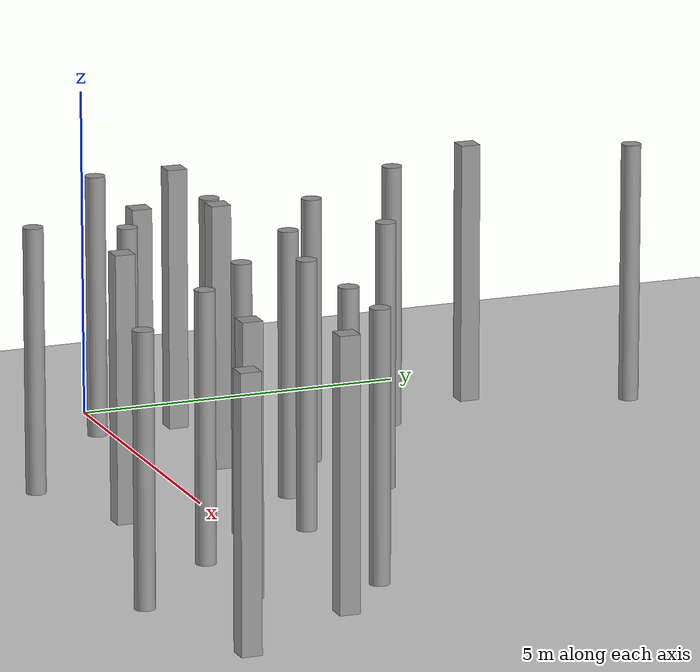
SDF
<sdf version="1.6">
 <world name="default">
  <model name="ground_plane">
   <static>1</static>
   <link name="link">
    <collision name="collision">
     <geometry><plane><normal>0 0 1</normal><size>100 100</size></plane></geometry>
    </collision>
    <visual name="visual">
     <cast_shadows>0</cast_shadows>
     <geometry><plane><normal>0 0 1</normal><size>100 100</size></plane></geometry>
     <material>
      <script><uri>file://media/materials/scripts/gazebo.material</uri><name>Gazebo/Gray</name></script>
     </material>
    </visual>
   </link>
  </model>
  <model name="unit_box_clone_5">
   <link name="link">
    <inertial>
     <mass>1000</mass>
     <inertia><ixx>166.667</ixx><ixy>0</ixy><ixz>0</ixz><iyy>166.667</iyy><iyz>0</iyz><izz>166.667</izz></inertia>
    </inertial>
    <visual name="visual">
     <geometry><box><size>0.3 0.3 4</size></box></geometry>
     <material>
      <script><name>Gazebo/Grey</name><uri>file://media/materials/scripts/gazebo.material</uri></script>
      <shader type="vertex"><normal_map>__default__</normal_map></shader>
      <ambient>0.3 0.3 0.3 1</ambient>
      <diffuse>0.7 0.7 0.7 1</diffuse>
      <specular>0.01 0.01 0.01 1</specular>
      <emissive>0 0 0 1</emissive>
     </material>
    </visual>
    <collision name="collision">
     <geometry><box><size>0.3 0.3 4</size></box></geometry>
     <surface>
      <friction>
       <ode><mu>1</mu><mu2>1</mu2><fdir1>0 0 0</fdir1><slip1>0</slip1><slip2>0</slip2></ode>
       <torsional>
        <coefficient>1</coefficient>
        <patch_radius>0</patch_radius>
        <surface_radius>0</surface_radius>
        <use_patch_radius>1</use_patch_radius>
        <ode><slip>0</slip></ode>
       </torsional>
      </friction>
      <bounce><restitution_coefficient>0</restitution_coefficient><threshold>1e+06</threshold></bounce>
      <contact>
       <collide_without_contact>0</collide_without_contact>
       <collide_without_contact_bitmask>1</collide_without_contact_bitmask>
       <collide_bitmask>1</collide_bitmask>
       <ode>
        <soft_cfm>0</soft_cfm>
        <soft_erp>0.2</soft_erp>
        <kp>1e+13</kp>
        <kd>1</kd>
        <max_vel>0.01</max_vel>
        <min_depth>0</min_depth>
       </ode>
       <bullet>
        <split_impulse>1</split_impulse>
        <split_impulse_penetration_threshold>-0.01</split_impulse_penetration_threshold>
        <soft_cfm>0</soft_cfm>
        <soft_erp>0.2</soft_erp>
        <kp>1e+13</kp>
        <kd>1</kd>
       </bullet>
      </contact>
     </surface>
    </collision>
   </link>
   <static>0</static>
   <pose>3.35408 0.911814 2 1e-06 5e-06 -0.010194</pose>
  </model>
  <model name="unit_box_clone_6">
   <link name="link">
    <inertial>
     <mass>1000</mass>
     <inertia><ixx>166.667</ixx><ixy>0</ixy><ixz>0</ixz><iyy>166.667</iyy><iyz>0</iyz><izz>166.667</izz></inertia>
    </inertial>
    <visual name="visual">
     <geometry><box><size>0.3 0.3 4</size></box></geometry>
     <material>
      <script><name>Gazebo/Grey</name><uri>file://media/materials/scripts/gazebo.material</uri></script>
      <shader type="vertex"><normal_map>__default__</normal_map></shader>
      <ambient>0.3 0.3 0.3 1</ambient>
      <diffuse>0.7 0.7 0.7 1</diffuse>
      <specular>0.01 0.01 0.01 1</specular>
      <emissive>0 0 0 1</emissive>
     </material>
    </visual>
    <collision name="collision">
     <geometry><box><size>0.3 0.3 4</size></box></geometry>
     <surface>
      <friction>
       <ode><mu>1</mu><mu2>1</mu2><fdir1>0 0 0</fdir1><slip1>0</slip1><slip2>0</slip2></ode>
       <torsional>
        <coefficient>1</coefficient>
        <patch_radius>0</patch_radius>
        <surface_radius>0</surface_radius>
        <use_patch_radius>1</use_patch_radius>
        <ode><slip>0</slip></ode>
       </torsional>
      </friction>
      <bounce><restitution_coefficient>0</restitution_coefficient><threshold>1e+06</threshold></bounce>
      <contact>
       <collide_without_contact>0</collide_without_contact>
       <collide_without_contact_bitmask>1</collide_without_contact_bitmask>
       <collide_bitmask>1</collide_bitmask>
       <ode>
        <soft_cfm>0</soft_cfm>
        <soft_erp>0.2</soft_erp>
        <kp>1e+13</kp>
        <kd>1</kd>
        <max_vel>0.01</max_vel>
        <min_depth>0</min_depth>
       </ode>
       <bullet>
        <split_impulse>1</split_impulse>
        <split_impulse_penetration_threshold>-0.01</split_impulse_penetration_threshold>
        <soft_cfm>0</soft_cfm>
        <soft_erp>0.2</soft_erp>
        <kp>1e+13</kp>
        <kd>1</kd>
       </bullet>
      </contact>
     </surface>
    </collision>
   </link>
   <static>0</static>
   <pose>10.5124 0.091577 2 1.3e-05 -1e-06 -0.012364</pose>
  </model>
  <model name="unit_cylinder">
   <link name="link">
    <inertial>
     <mass>1000</mass>
     <inertia><ixx>145.833</ixx><ixy>0</ixy><ixz>0</ixz><iyy>145.833</iyy><iyz>0</iyz><izz>125</izz></inertia>
    </inertial>
    <visual name="visual">
     <geometry><cylinder><radius>0.15</radius><length>4</length></cylinder></geometry>
     <material>
      <script><name>Gazebo/Grey</name><uri>file://media/materials/scripts/gazebo.material</uri></script>
      <shader type="vertex"><normal_map>__default__</normal_map></shader>
      <ambient>0.3 0.3 0.3 1</ambient>
      <diffuse>0.7 0.7 0.7 1</diffuse>
      <specular>0.01 0.01 0.01 1</specular>
      <emissive>0 0 0 1</emissive>
     </material>
    </visual>
    <collision name="collision">
     <geometry><cylinder><radius>0.15</radius><length>4</length></cylinder></geometry>
     <surface>
      <friction>
       <ode><mu>1</mu><mu2>1</mu2><fdir1>0 0 0</fdir1><slip1>0</slip1><slip2>0</slip2></ode>
       <torsional>
        <coefficient>1</coefficient>
        <patch_radius>0</patch_radius>
        <surface_radius>0</surface_radius>
        <use_patch_radius>1</use_patch_radius>
        <ode><slip>0</slip></ode>
       </torsional>
      </friction>
      <bounce><restitution_coefficient>0</restitution_coefficient><threshold>1e+06</threshold></bounce>
      <contact>
       <collide_without_contact>0</collide_without_contact>
       <collide_without_contact_bitmask>1</collide_without_contact_bitmask>
       <collide_bitmask>1</collide_bitmask>
       <ode>
        <soft_cfm>0</soft_cfm>
        <soft_erp>0.2</soft_erp>
        <kp>1e+13</kp>
        <kd>1</kd>
        <max_vel>0.01</max_vel>
        <min_depth>0</min_depth>
       </ode>
       <bullet>
        <split_impulse>1</split_impulse>
        <split_impulse_penetration_threshold>-0.01</split_impulse_penetration_threshold>
        <soft_cfm>0</soft_cfm>
        <soft_erp>0.2</soft_erp>
        <kp>1e+13</kp>
        <kd>1</kd>
       </bullet>
      </contact>
     </surface>
    </collision>
   </link>
   <static>0</static>
   <pose>3.55601 2.30072 1.99998 -1e-06 1e-06 -0.131824</pose>
  </model>
  <model name="unit_cylinder_clone_4">
   <link name="link">
    <inertial>
     <mass>1000</mass>
     <inertia><ixx>145.833</ixx><ixy>0</ixy><ixz>0</ixz><iyy>145.833</iyy><iyz>0</iyz><izz>125</izz></inertia>
    </inertial>
    <visual name="visual">
     <geometry><cylinder><radius>0.15</radius><length>4</length></cylinder></geometry>
     <material>
      <script><name>Gazebo/Grey</name><uri>file://media/materials/scripts/gazebo.material</uri></script>
      <shader type="vertex"><normal_map>__default__</normal_map></shader>
      <ambient>0.3 0.3 0.3 1</ambient>
      <diffuse>0.7 0.7 0.7 1</diffuse>
      <specular>0.01 0.01 0.01 1</specular>
      <emissive>0 0 0 1</emissive>
     </material>
    </visual>
    <collision name="collision">
     <geometry><cylinder><radius>0.15</radius><length>4</length></cylinder></geometry>
     <surface>
      <friction>
       <ode><mu>1</mu><mu2>1</mu2><fdir1>0 0 0</fdir1><slip1>0</slip1><slip2>0</slip2></ode>
       <torsional>
        <coefficient>1</coefficient>
        <patch_radius>0</patch_radius>
        <surface_radius>0</surface_radius>
        <use_patch_radius>1</use_patch_radius>
        <ode><slip>0</slip></ode>
       </torsional>
      </friction>
      <bounce><restitution_coefficient>0</restitution_coefficient><threshold>1e+06</threshold></bounce>
      <contact>
       <collide_without_contact>0</collide_without_contact>
       <collide_without_contact_bitmask>1</collide_without_contact_bitmask>
       <collide_bitmask>1</collide_bitmask>
       <ode>
        <soft_cfm>0</soft_cfm>
        <soft_erp>0.2</soft_erp>
        <kp>1e+13</kp>
        <kd>1</kd>
        <max_vel>0.01</max_vel>
        <min_depth>0</min_depth>
       </ode>
       <bullet>
        <split_impulse>1</split_impulse>
        <split_impulse_penetration_threshold>-0.01</split_impulse_penetration_threshold>
        <soft_cfm>0</soft_cfm>
        <soft_erp>0.2</soft_erp>
        <kp>1e+13</kp>
        <kd>1</kd>
       </bullet>
      </contact>
     </surface>
    </collision>
   </link>
   <static>0</static>
   <pose>5.12407 1.326 1.99998 -2e-06 -1e-06 -0.127446</pose>
  </model>
  <model name="unit_cylinder_clone_5">
   <link name="link">
    <inertial>
     <mass>1000</mass>
     <inertia><ixx>145.833</ixx><ixy>0</ixy><ixz>0</ixz><iyy>145.833</iyy><iyz>0</iyz><izz>125</izz></inertia>
    </inertial>
    <visual name="visual">
     <geometry><cylinder><radius>0.15</radius><length>4</length></cylinder></geometry>
     <material>
      <script><name>Gazebo/Grey</name><uri>file://media/materials/scripts/gazebo.material</uri></script>
      <shader type="vertex"><normal_map>__default__</normal_map></shader>
      <ambient>0.3 0.3 0.3 1</ambient>
      <diffuse>0.7 0.7 0.7 1</diffuse>
      <specular>0.01 0.01 0.01 1</specular>
      <emissive>0 0 0 1</emissive>
     </material>
    </visual>
    <collision name="collision">
     <geometry><cylinder><radius>0.15</radius><length>4</length></cylinder></geometry>
     <surface>
      <friction>
       <ode><mu>1</mu><mu2>1</mu2><fdir1>0 0 0</fdir1><slip1>0</slip1><slip2>0</slip2></ode>
       <torsional>
        <coefficient>1</coefficient>
        <patch_radius>0</patch_radius>
        <surface_radius>0</surface_radius>
        <use_patch_radius>1</use_patch_radius>
        <ode><slip>0</slip></ode>
       </torsional>
      </friction>
      <bounce><restitution_coefficient>0</restitution_coefficient><threshold>1e+06</threshold></bounce>
      <contact>
       <collide_without_contact>0</collide_without_contact>
       <collide_without_contact_bitmask>1</collide_without_contact_bitmask>
       <collide_bitmask>1</collide_bitmask>
       <ode>
        <soft_cfm>0</soft_cfm>
        <soft_erp>0.2</soft_erp>
        <kp>1e+13</kp>
        <kd>1</kd>
        <max_vel>0.01</max_vel>
        <min_depth>0</min_depth>
       </ode>
       <bullet>
        <split_impulse>1</split_impulse>
        <split_impulse_penetration_threshold>-0.01</split_impulse_penetration_threshold>
        <soft_cfm>0</soft_cfm>
        <soft_erp>0.2</soft_erp>
        <kp>1e+13</kp>
        <kd>1</kd>
       </bullet>
      </contact>
     </surface>
    </collision>
   </link>
   <static>0</static>
   <pose>5.2098 2.80517 1.99998 -1e-06 -1e-06 -0.12355</pose>
  </model>
  <model name="unit_cylinder_clone_6">
   <link name="link">
    <inertial>
     <mass>1000</mass>
     <inertia><ixx>145.833</ixx><ixy>0</ixy><ixz>0</ixz><iyy>145.833</iyy><iyz>0</iyz><izz>125</izz></inertia>
    </inertial>
    <visual name="visual">
     <geometry><cylinder><radius>0.15</radius><length>4</length></cylinder></geometry>
     <material>
      <script><name>Gazebo/Grey</name><uri>file://media/materials/scripts/gazebo.material</uri></script>
      <shader type="vertex"><normal_map>__default__</normal_map></shader>
      <ambient>0.3 0.3 0.3 1</ambient>
      <diffuse>0.7 0.7 0.7 1</diffuse>
      <specular>0.01 0.01 0.01 1</specular>
      <emissive>0 0 0 1</emissive>
     </material>
    </visual>
    <collision name="collision">
     <geometry><cylinder><radius>0.15</radius><length>4</length></cylinder></geometry>
     <surface>
      <friction>
       <ode><mu>1</mu><mu2>1</mu2><fdir1>0 0 0</fdir1><slip1>0</slip1><slip2>0</slip2></ode>
       <torsional>
        <coefficient>1</coefficient>
        <patch_radius>0</patch_radius>
        <surface_radius>0</surface_radius>
        <use_patch_radius>1</use_patch_radius>
        <ode><slip>0</slip></ode>
       </torsional>
      </friction>
      <bounce><restitution_coefficient>0</restitution_coefficient><threshold>1e+06</threshold></bounce>
      <contact>
       <collide_without_contact>0</collide_without_contact>
       <collide_without_contact_bitmask>1</collide_without_contact_bitmask>
       <collide_bitmask>1</collide_bitmask>
       <ode>
        <soft_cfm>0</soft_cfm>
        <soft_erp>0.2</soft_erp>
        <kp>1e+13</kp>
        <kd>1</kd>
        <max_vel>0.01</max_vel>
        <min_depth>0</min_depth>
       </ode>
       <bullet>
        <split_impulse>1</split_impulse>
        <split_impulse_penetration_threshold>-0.01</split_impulse_penetration_threshold>
        <soft_cfm>0</soft_cfm>
        <soft_erp>0.2</soft_erp>
        <kp>1e+13</kp>
        <kd>1</kd>
       </bullet>
      </contact>
     </surface>
    </collision>
   </link>
   <static>0</static>
   <pose>2.98126 0.91654 1.99998 -2e-06 1e-06 -0.126861</pose>
  </model>
  <model name="unit_box_clone_20_clone">
   <link name="link">
    <inertial>
     <mass>1000</mass>
     <inertia><ixx>166.667</ixx><ixy>0</ixy><ixz>0</ixz><iyy>166.667</iyy><iyz>0</iyz><izz>166.667</izz></inertia>
    </inertial>
    <visual name="visual">
     <geometry><box><size>0.3 0.3 4</size></box></geometry>
     <material>
      <script><name>Gazebo/Grey</name><uri>file://media/materials/scripts/gazebo.material</uri></script>
      <shader type="vertex"><normal_map>__default__</normal_map></shader>
      <ambient>0.3 0.3 0.3 1</ambient>
      <diffuse>0.7 0.7 0.7 1</diffuse>
      <specular>0.01 0.01 0.01 1</specular>
      <emissive>0 0 0 1</emissive>
     </material>
    </visual>
    <collision name="collision">
     <geometry><box><size>0.3 0.3 4</size></box></geometry>
     <surface>
      <friction>
       <ode><mu>1</mu><mu2>1</mu2><fdir1>0 0 0</fdir1><slip1>0</slip1><slip2>0</slip2></ode>
       <torsional>
        <coefficient>1</coefficient>
        <patch_radius>0</patch_radius>
        <surface_radius>0</surface_radius>
        <use_patch_radius>1</use_patch_radius>
        <ode><slip>0</slip></ode>
       </torsional>
      </friction>
      <bounce><restitution_coefficient>0</restitution_coefficient><threshold>1e+06</threshold></bounce>
      <contact>
       <collide_without_contact>0</collide_without_contact>
       <collide_without_contact_bitmask>1</collide_without_contact_bitmask>
       <collide_bitmask>1</collide_bitmask>
       <ode>
        <soft_cfm>0</soft_cfm>
        <soft_erp>0.2</soft_erp>
        <kp>1e+13</kp>
        <kd>1</kd>
        <max_vel>0.01</max_vel>
        <min_depth>0</min_depth>
       </ode>
       <bullet>
        <split_impulse>1</split_impulse>
        <split_impulse_penetration_threshold>-0.01</split_impulse_penetration_threshold>
        <soft_cfm>0</soft_cfm>
        <soft_erp>0.2</soft_erp>
        <kp>1e+13</kp>
        <kd>1</kd>
       </bullet>
      </contact>
     </surface>
    </collision>
   </link>
   <static>0</static>
   <pose>3.12598 -0.231344 2.00001 9e-06 2.7e-05 -0.004146</pose>
  </model>
  <model name="unit_cylinder_clone_1_clone_7">
   <link name="link">
    <inertial>
     <mass>1000</mass>
     <inertia><ixx>145.833</ixx><ixy>0</ixy><ixz>0</ixz><iyy>145.833</iyy><iyz>0</iyz><izz>125</izz></inertia>
    </inertial>
    <visual name="visual">
     <geometry><cylinder><radius>0.15</radius><length>4</length></cylinder></geometry>
     <material>
      <script><name>Gazebo/Grey</name><uri>file://media/materials/scripts/gazebo.material</uri></script>
      <shader type="vertex"><normal_map>__default__</normal_map></shader>
      <ambient>0.3 0.3 0.3 1</ambient>
      <diffuse>0.7 0.7 0.7 1</diffuse>
      <specular>0.01 0.01 0.01 1</specular>
      <emissive>0 0 0 1</emissive>
     </material>
    </visual>
    <collision name="collision">
     <geometry><cylinder><radius>0.15</radius><length>4</length></cylinder></geometry>
     <surface>
      <friction>
       <ode><mu>1</mu><mu2>1</mu2><fdir1>0 0 0</fdir1><slip1>0</slip1><slip2>0</slip2></ode>
       <torsional>
        <coefficient>1</coefficient>
        <patch_radius>0</patch_radius>
        <surface_radius>0</surface_radius>
        <use_patch_radius>1</use_patch_radius>
        <ode><slip>0</slip></ode>
       </torsional>
      </friction>
      <bounce><restitution_coefficient>0</restitution_coefficient><threshold>1e+06</threshold></bounce>
      <contact>
       <collide_without_contact>0</collide_without_contact>
       <collide_without_contact_bitmask>1</collide_without_contact_bitmask>
       <collide_bitmask>1</collide_bitmask>
       <ode>
        <soft_cfm>0</soft_cfm>
        <soft_erp>0.2</soft_erp>
        <kp>1e+13</kp>
        <kd>1</kd>
        <max_vel>0.01</max_vel>
        <min_depth>0</min_depth>
       </ode>
       <bullet>
        <split_impulse>1</split_impulse>
        <split_impulse_penetration_threshold>-0.01</split_impulse_penetration_threshold>
        <soft_cfm>0</soft_cfm>
        <soft_erp>0.2</soft_erp>
        <kp>1e+13</kp>
        <kd>1</kd>
       </bullet>
      </contact>
     </surface>
    </collision>
   </link>
   <static>0</static>
   <pose>7.71247 -0.927785 1.99995 -0.000268 4.9e-05 -0.614103</pose>
  </model>
  <model name="unit_cylinder_clone_1_clone_22">
   <link name="link">
    <inertial>
     <mass>1000</mass>
     <inertia><ixx>145.833</ixx><ixy>0</ixy><ixz>0</ixz><iyy>145.833</iyy><iyz>0</iyz><izz>125</izz></inertia>
    </inertial>
    <visual name="visual">
     <geometry><cylinder><radius>0.15</radius><length>4</length></cylinder></geometry>
     <material>
      <script><name>Gazebo/Grey</name><uri>file://media/materials/scripts/gazebo.material</uri></script>
      <shader type="vertex"><normal_map>__default__</normal_map></shader>
      <ambient>0.3 0.3 0.3 1</ambient>
      <diffuse>0.7 0.7 0.7 1</diffuse>
      <specular>0.01 0.01 0.01 1</specular>
      <emissive>0 0 0 1</emissive>
     </material>
    </visual>
    <collision name="collision">
     <geometry><cylinder><radius>0.15</radius><length>4</length></cylinder></geometry>
     <surface>
      <friction>
       <ode><mu>1</mu><mu2>1</mu2><fdir1>0 0 0</fdir1><slip1>0</slip1><slip2>0</slip2></ode>
       <torsional>
        <coefficient>1</coefficient>
        <patch_radius>0</patch_radius>
        <surface_radius>0</surface_radius>
        <use_patch_radius>1</use_patch_radius>
        <ode><slip>0</slip></ode>
       </torsional>
      </friction>
      <bounce><restitution_coefficient>0</restitution_coefficient><threshold>1e+06</threshold></bounce>
      <contact>
       <collide_without_contact>0</collide_without_contact>
       <collide_without_contact_bitmask>1</collide_without_contact_bitmask>
       <collide_bitmask>1</collide_bitmask>
       <ode>
        <soft_cfm>0</soft_cfm>
        <soft_erp>0.2</soft_erp>
        <kp>1e+13</kp>
        <kd>1</kd>
        <max_vel>0.01</max_vel>
        <min_depth>0</min_depth>
       </ode>
       <bullet>
        <split_impulse>1</split_impulse>
        <split_impulse_penetration_threshold>-0.01</split_impulse_penetration_threshold>
        <soft_cfm>0</soft_cfm>
        <soft_erp>0.2</soft_erp>
        <kp>1e+13</kp>
        <kd>1</kd>
       </bullet>
      </contact>
     </surface>
    </collision>
   </link>
   <static>0</static>
   <pose>8.29048 1.00177 1.99995 -0.000268 5.1e-05 -0.606129</pose>
  </model>
  <model name="unit_cylinder_clone_1_clone_29">
   <link name="link">
    <inertial>
     <mass>1000</mass>
     <inertia><ixx>145.833</ixx><ixy>0</ixy><ixz>0</ixz><iyy>145.833</iyy><iyz>0</iyz><izz>125</izz></inertia>
    </inertial>
    <visual name="visual">
     <geometry><cylinder><radius>0.15</radius><length>4</length></cylinder></geometry>
     <material>
      <script><name>Gazebo/Grey</name><uri>file://media/materials/scripts/gazebo.material</uri></script>
      <shader type="vertex"><normal_map>__default__</normal_map></shader>
      <ambient>0.3 0.3 0.3 1</ambient>
      <diffuse>0.7 0.7 0.7 1</diffuse>
      <specular>0.01 0.01 0.01 1</specular>
      <emissive>0 0 0 1</emissive>
     </material>
    </visual>
    <collision name="collision">
     <geometry><cylinder><radius>0.15</radius><length>4</length></cylinder></geometry>
     <surface>
      <friction>
       <ode><mu>1</mu><mu2>1</mu2><fdir1>0 0 0</fdir1><slip1>0</slip1><slip2>0</slip2></ode>
       <torsional>
        <coefficient>1</coefficient>
        <patch_radius>0</patch_radius>
        <surface_radius>0</surface_radius>
        <use_patch_radius>1</use_patch_radius>
        <ode><slip>0</slip></ode>
       </torsional>
      </friction>
      <bounce><restitution_coefficient>0</restitution_coefficient><threshold>1e+06</threshold></bounce>
      <contact>
       <collide_without_contact>0</collide_without_contact>
       <collide_without_contact_bitmask>1</collide_without_contact_bitmask>
       <collide_bitmask>1</collide_bitmask>
       <ode>
        <soft_cfm>0</soft_cfm>
        <soft_erp>0.2</soft_erp>
        <kp>1e+13</kp>
        <kd>1</kd>
        <max_vel>0.01</max_vel>
        <min_depth>0</min_depth>
       </ode>
       <bullet>
        <split_impulse>1</split_impulse>
        <split_impulse_penetration_threshold>-0.01</split_impulse_penetration_threshold>
        <soft_cfm>0</soft_cfm>
        <soft_erp>0.2</soft_erp>
        <kp>1e+13</kp>
        <kd>1</kd>
       </bullet>
      </contact>
     </surface>
    </collision>
   </link>
   <static>0</static>
   <pose>9.33766 -2.43636 1.99995 -0.000268 4.9e-05 -0.614716</pose>
  </model>
  <model name="unit_cylinder_clone_1_clone_7_clone">
   <link name="link">
    <inertial>
     <mass>1000</mass>
     <inertia><ixx>145.833</ixx><ixy>0</ixy><ixz>0</ixz><iyy>145.833</iyy><iyz>0</iyz><izz>125</izz></inertia>
    </inertial>
    <visual name="visual">
     <geometry><cylinder><radius>0.15</radius><length>4</length></cylinder></geometry>
     <material>
      <script><name>Gazebo/Grey</name><uri>file://media/materials/scripts/gazebo.material</uri></script>
      <shader type="vertex"><normal_map>__default__</normal_map></shader>
      <ambient>0.3 0.3 0.3 1</ambient>
      <diffuse>0.7 0.7 0.7 1</diffuse>
      <specular>0.01 0.01 0.01 1</specular>
      <emissive>0 0 0 1</emissive>
     </material>
    </visual>
    <collision name="collision">
     <geometry><cylinder><radius>0.15</radius><length>4</length></cylinder></geometry>
     <surface>
      <friction>
       <ode><mu>1</mu><mu2>1</mu2><fdir1>0 0 0</fdir1><slip1>0</slip1><slip2>0</slip2></ode>
       <torsional>
        <coefficient>1</coefficient>
        <patch_radius>0</patch_radius>
        <surface_radius>0</surface_radius>
        <use_patch_radius>1</use_patch_radius>
        <ode><slip>0</slip></ode>
       </torsional>
      </friction>
      <bounce><restitution_coefficient>0</restitution_coefficient><threshold>1e+06</threshold></bounce>
      <contact>
       <collide_without_contact>0</collide_without_contact>
       <collide_without_contact_bitmask>1</collide_without_contact_bitmask>
       <collide_bitmask>1</collide_bitmask>
       <ode>
        <soft_cfm>0</soft_cfm>
        <soft_erp>0.2</soft_erp>
        <kp>1e+13</kp>
        <kd>1</kd>
        <max_vel>0.01</max_vel>
        <min_depth>0</min_depth>
       </ode>
       <bullet>
        <split_impulse>1</split_impulse>
        <split_impulse_penetration_threshold>-0.01</split_impulse_penetration_threshold>
        <soft_cfm>0</soft_cfm>
        <soft_erp>0.2</soft_erp>
        <kp>1e+13</kp>
        <kd>1</kd>
       </bullet>
      </contact>
     </surface>
    </collision>
   </link>
   <static>0</static>
   <pose>2.22452 4.10934 1.99995 -0.000268 4.9e-05 -0.611901</pose>
  </model>
  <model name="unit_cylinder_clone_1_clone_7_clone_1">
   <link name="link">
    <inertial>
     <mass>1000</mass>
     <inertia><ixx>145.833</ixx><ixy>0</ixy><ixz>0</ixz><iyy>145.833</iyy><iyz>0</iyz><izz>125</izz></inertia>
    </inertial>
    <visual name="visual">
     <geometry><cylinder><radius>0.15</radius><length>4</length></cylinder></geometry>
     <material>
      <script><name>Gazebo/Grey</name><uri>file://media/materials/scripts/gazebo.material</uri></script>
      <shader type="vertex"><normal_map>__default__</normal_map></shader>
      <ambient>0.3 0.3 0.3 1</ambient>
      <diffuse>0.7 0.7 0.7 1</diffuse>
      <specular>0.01 0.01 0.01 1</specular>
      <emissive>0 0 0 1</emissive>
     </material>
    </visual>
    <collision name="collision">
     <geometry><cylinder><radius>0.15</radius><length>4</length></cylinder></geometry>
     <surface>
      <friction>
       <ode><mu>1</mu><mu2>1</mu2><fdir1>0 0 0</fdir1><slip1>0</slip1><slip2>0</slip2></ode>
       <torsional>
        <coefficient>1</coefficient>
        <patch_radius>0</patch_radius>
        <surface_radius>0</surface_radius>
        <use_patch_radius>1</use_patch_radius>
        <ode><slip>0</slip></ode>
       </torsional>
      </friction>
      <bounce><restitution_coefficient>0</restitution_coefficient><threshold>1e+06</threshold></bounce>
      <contact>
       <collide_without_contact>0</collide_without_contact>
       <collide_without_contact_bitmask>1</collide_without_contact_bitmask>
       <collide_bitmask>1</collide_bitmask>
       <ode>
        <soft_cfm>0</soft_cfm>
        <soft_erp>0.2</soft_erp>
        <kp>1e+13</kp>
        <kd>1</kd>
        <max_vel>0.01</max_vel>
        <min_depth>0</min_depth>
       </ode>
       <bullet>
        <split_impulse>1</split_impulse>
        <split_impulse_penetration_threshold>-0.01</split_impulse_penetration_threshold>
        <soft_cfm>0</soft_cfm>
        <soft_erp>0.2</soft_erp>
        <kp>1e+13</kp>
        <kd>1</kd>
       </bullet>
      </contact>
     </surface>
    </collision>
   </link>
   <static>0</static>
   <pose>6.72897 0.983339 1.99995 -0.000268 5.2e-05 -0.601212</pose>
  </model>
  <model name="unit_cylinder_clone_7">
   <link name="link">
    <inertial>
     <mass>1000</mass>
     <inertia><ixx>145.833</ixx><ixy>0</ixy><ixz>0</ixz><iyy>145.833</iyy><iyz>0</iyz><izz>125</izz></inertia>
    </inertial>
    <visual name="visual">
     <geometry><cylinder><radius>0.15</radius><length>4</length></cylinder></geometry>
     <material>
      <script><name>Gazebo/Grey</name><uri>file://media/materials/scripts/gazebo.material</uri></script>
      <shader type="vertex"><normal_map>__default__</normal_map></shader>
      <ambient>0.3 0.3 0.3 1</ambient>
      <diffuse>0.7 0.7 0.7 1</diffuse>
      <specular>0.01 0.01 0.01 1</specular>
      <emissive>0 0 0 1</emissive>
     </material>
    </visual>
    <collision name="collision">
     <geometry><cylinder><radius>0.15</radius><length>4</length></cylinder></geometry>
     <surface>
      <friction>
       <ode><mu>1</mu><mu2>1</mu2><fdir1>0 0 0</fdir1><slip1>0</slip1><slip2>0</slip2></ode>
       <torsional>
        <coefficient>1</coefficient>
        <patch_radius>0</patch_radius>
        <surface_radius>0</surface_radius>
        <use_patch_radius>1</use_patch_radius>
        <ode><slip>0</slip></ode>
       </torsional>
      </friction>
      <bounce><restitution_coefficient>0</restitution_coefficient><threshold>1e+06</threshold></bounce>
      <contact>
       <collide_without_contact>0</collide_without_contact>
       <collide_without_contact_bitmask>1</collide_without_contact_bitmask>
       <collide_bitmask>1</collide_bitmask>
       <ode>
        <soft_cfm>0</soft_cfm>
        <soft_erp>0.2</soft_erp>
        <kp>1e+13</kp>
        <kd>1</kd>
        <max_vel>0.01</max_vel>
        <min_depth>0</min_depth>
       </ode>
       <bullet>
        <split_impulse>1</split_impulse>
        <split_impulse_penetration_threshold>-0.01</split_impulse_penetration_threshold>
        <soft_cfm>0</soft_cfm>
        <soft_erp>0.2</soft_erp>
        <kp>1e+13</kp>
        <kd>1</kd>
       </bullet>
      </contact>
     </surface>
    </collision>
   </link>
   <static>0</static>
   <pose>1.14753 -0.199483 1.99998 -1e-06 -0 -0.137359</pose>
  </model>
  <model name="unit_cylinder_clone_8">
   <link name="link">
    <inertial>
     <mass>1000</mass>
     <inertia><ixx>145.833</ixx><ixy>0</ixy><ixz>0</ixz><iyy>145.833</iyy><iyz>0</iyz><izz>125</izz></inertia>
    </inertial>
    <visual name="visual">
     <geometry><cylinder><radius>0.15</radius><length>4</length></cylinder></geometry>
     <material>
      <script><name>Gazebo/Grey</name><uri>file://media/materials/scripts/gazebo.material</uri></script>
      <shader type="vertex"><normal_map>__default__</normal_map></shader>
      <ambient>0.3 0.3 0.3 1</ambient>
      <diffuse>0.7 0.7 0.7 1</diffuse>
      <specular>0.01 0.01 0.01 1</specular>
      <emissive>0 0 0 1</emissive>
     </material>
    </visual>
    <collision name="collision">
     <geometry><cylinder><radius>0.15</radius><length>4</length></cylinder></geometry>
     <surface>
      <friction>
       <ode><mu>1</mu><mu2>1</mu2><fdir1>0 0 0</fdir1><slip1>0</slip1><slip2>0</slip2></ode>
       <torsional>
        <coefficient>1</coefficient>
        <patch_radius>0</patch_radius>
        <surface_radius>0</surface_radius>
        <use_patch_radius>1</use_patch_radius>
        <ode><slip>0</slip></ode>
       </torsional>
      </friction>
      <bounce><restitution_coefficient>0</restitution_coefficient><threshold>1e+06</threshold></bounce>
      <contact>
       <collide_without_contact>0</collide_without_contact>
       <collide_without_contact_bitmask>1</collide_without_contact_bitmask>
       <collide_bitmask>1</collide_bitmask>
       <ode>
        <soft_cfm>0</soft_cfm>
        <soft_erp>0.2</soft_erp>
        <kp>1e+13</kp>
        <kd>1</kd>
        <max_vel>0.01</max_vel>
        <min_depth>0</min_depth>
       </ode>
       <bullet>
        <split_impulse>1</split_impulse>
        <split_impulse_penetration_threshold>-0.01</split_impulse_penetration_threshold>
        <soft_cfm>0</soft_cfm>
        <soft_erp>0.2</soft_erp>
        <kp>1e+13</kp>
        <kd>1</kd>
       </bullet>
      </contact>
     </surface>
    </collision>
   </link>
   <static>0</static>
   <pose>2.29809 7.97267 1.99998 -1e-06 1e-06 -0.135201</pose>
  </model>
  <model name="unit_cylinder_clone_9">
   <link name="link">
    <inertial>
     <mass>1000</mass>
     <inertia><ixx>145.833</ixx><ixy>0</ixy><ixz>0</ixz><iyy>145.833</iyy><iyz>0</iyz><izz>125</izz></inertia>
    </inertial>
    <visual name="visual">
     <geometry><cylinder><radius>0.15</radius><length>4</length></cylinder></geometry>
     <material>
      <script><name>Gazebo/Grey</name><uri>file://media/materials/scripts/gazebo.material</uri></script>
      <shader type="vertex"><normal_map>__default__</normal_map></shader>
      <ambient>0.3 0.3 0.3 1</ambient>
      <diffuse>0.7 0.7 0.7 1</diffuse>
      <specular>0.01 0.01 0.01 1</specular>
      <emissive>0 0 0 1</emissive>
     </material>
    </visual>
    <collision name="collision">
     <geometry><cylinder><radius>0.15</radius><length>4</length></cylinder></geometry>
     <surface>
      <friction>
       <ode><mu>1</mu><mu2>1</mu2><fdir1>0 0 0</fdir1><slip1>0</slip1><slip2>0</slip2></ode>
       <torsional>
        <coefficient>1</coefficient>
        <patch_radius>0</patch_radius>
        <surface_radius>0</surface_radius>
        <use_patch_radius>1</use_patch_radius>
        <ode><slip>0</slip></ode>
       </torsional>
      </friction>
      <bounce><restitution_coefficient>0</restitution_coefficient><threshold>1e+06</threshold></bounce>
      <contact>
       <collide_without_contact>0</collide_without_contact>
       <collide_without_contact_bitmask>1</collide_without_contact_bitmask>
       <collide_bitmask>1</collide_bitmask>
       <ode>
        <soft_cfm>0</soft_cfm>
        <soft_erp>0.2</soft_erp>
        <kp>1e+13</kp>
        <kd>1</kd>
        <max_vel>0.01</max_vel>
        <min_depth>0</min_depth>
       </ode>
       <bullet>
        <split_impulse>1</split_impulse>
        <split_impulse_penetration_threshold>-0.01</split_impulse_penetration_threshold>
        <soft_cfm>0</soft_cfm>
        <soft_erp>0.2</soft_erp>
        <kp>1e+13</kp>
        <kd>1</kd>
       </bullet>
      </contact>
     </surface>
    </collision>
   </link>
   <static>0</static>
   <pose>4.11748 -0.772868 1.99998 -1e-06 1e-06 -0.136581</pose>
  </model>
  <model name="unit_cylinder_clone_10">
   <link name="link">
    <inertial>
     <mass>1000</mass>
     <inertia><ixx>145.833</ixx><ixy>0</ixy><ixz>0</ixz><iyy>145.833</iyy><iyz>0</iyz><izz>125</izz></inertia>
    </inertial>
    <visual name="visual">
     <geometry><cylinder><radius>0.15</radius><length>4</length></cylinder></geometry>
     <material>
      <script><name>Gazebo/Grey</name><uri>file://media/materials/scripts/gazebo.material</uri></script>
      <shader type="vertex"><normal_map>__default__</normal_map></shader>
      <ambient>0.3 0.3 0.3 1</ambient>
      <diffuse>0.7 0.7 0.7 1</diffuse>
      <specular>0.01 0.01 0.01 1</specular>
      <emissive>0 0 0 1</emissive>
     </material>
    </visual>
    <collision name="collision">
     <geometry><cylinder><radius>0.15</radius><length>4</length></cylinder></geometry>
     <surface>
      <friction>
       <ode><mu>1</mu><mu2>1</mu2><fdir1>0 0 0</fdir1><slip1>0</slip1><slip2>0</slip2></ode>
       <torsional>
        <coefficient>1</coefficient>
        <patch_radius>0</patch_radius>
        <surface_radius>0</surface_radius>
        <use_patch_radius>1</use_patch_radius>
        <ode><slip>0</slip></ode>
       </torsional>
      </friction>
      <bounce><restitution_coefficient>0</restitution_coefficient><threshold>1e+06</threshold></bounce>
      <contact>
       <collide_without_contact>0</collide_without_contact>
       <collide_without_contact_bitmask>1</collide_without_contact_bitmask>
       <collide_bitmask>1</collide_bitmask>
       <ode>
        <soft_cfm>0</soft_cfm>
        <soft_erp>0.2</soft_erp>
        <kp>1e+13</kp>
        <kd>1</kd>
        <max_vel>0.01</max_vel>
        <min_depth>0</min_depth>
       </ode>
       <bullet>
        <split_impulse>1</split_impulse>
        <split_impulse_penetration_threshold>-0.01</split_impulse_penetration_threshold>
        <soft_cfm>0</soft_cfm>
        <soft_erp>0.2</soft_erp>
        <kp>1e+13</kp>
        <kd>1</kd>
       </bullet>
      </contact>
     </surface>
    </collision>
   </link>
   <static>0</static>
   <pose>9.47875 1.00255 1.99998 -2e-06 1e-06 -0.128992</pose>
  </model>
  <model name="unit_cylinder_clone_11">
   <link name="link">
    <inertial>
     <mass>1000</mass>
     <inertia><ixx>145.833</ixx><ixy>0</ixy><ixz>0</ixz><iyy>145.833</iyy><iyz>0</iyz><izz>125</izz></inertia>
    </inertial>
    <visual name="visual">
     <geometry><cylinder><radius>0.15</radius><length>4</length></cylinder></geometry>
     <material>
      <script><name>Gazebo/Grey</name><uri>file://media/materials/scripts/gazebo.material</uri></script>
      <shader type="vertex"><normal_map>__default__</normal_map></shader>
      <ambient>0.3 0.3 0.3 1</ambient>
      <diffuse>0.7 0.7 0.7 1</diffuse>
      <specular>0.01 0.01 0.01 1</specular>
      <emissive>0 0 0 1</emissive>
     </material>
    </visual>
    <collision name="collision">
     <geometry><cylinder><radius>0.15</radius><length>4</length></cylinder></geometry>
     <surface>
      <friction>
       <ode><mu>1</mu><mu2>1</mu2><fdir1>0 0 0</fdir1><slip1>0</slip1><slip2>0</slip2></ode>
       <torsional>
        <coefficient>1</coefficient>
        <patch_radius>0</patch_radius>
        <surface_radius>0</surface_radius>
        <use_patch_radius>1</use_patch_radius>
        <ode><slip>0</slip></ode>
       </torsional>
      </friction>
      <bounce><restitution_coefficient>0</restitution_coefficient><threshold>1e+06</threshold></bounce>
      <contact>
       <collide_without_contact>0</collide_without_contact>
       <collide_without_contact_bitmask>1</collide_without_contact_bitmask>
       <collide_bitmask>1</collide_bitmask>
       <ode>
        <soft_cfm>0</soft_cfm>
        <soft_erp>0.2</soft_erp>
        <kp>1e+13</kp>
        <kd>1</kd>
        <max_vel>0.01</max_vel>
        <min_depth>0</min_depth>
       </ode>
       <bullet>
        <split_impulse>1</split_impulse>
        <split_impulse_penetration_threshold>-0.01</split_impulse_penetration_threshold>
        <soft_cfm>0</soft_cfm>
        <soft_erp>0.2</soft_erp>
        <kp>1e+13</kp>
        <kd>1</kd>
       </bullet>
      </contact>
     </surface>
    </collision>
   </link>
   <static>0</static>
   <pose>6.53228 0.072181 1.99998 -2e-06 1e-06 -0.138858</pose>
  </model>
  <model name="unit_cylinder_clone_clone_2">
   <link name="link">
    <inertial>
     <mass>1000</mass>
     <inertia><ixx>145.833</ixx><ixy>0</ixy><ixz>0</ixz><iyy>145.833</iyy><iyz>0</iyz><izz>125</izz></inertia>
    </inertial>
    <visual name="visual">
     <geometry><cylinder><radius>0.15</radius><length>4</length></cylinder></geometry>
     <material>
      <script><name>Gazebo/Grey</name><uri>file://media/materials/scripts/gazebo.material</uri></script>
      <shader type="vertex"><normal_map>__default__</normal_map></shader>
      <ambient>0.3 0.3 0.3 1</ambient>
      <diffuse>0.7 0.7 0.7 1</diffuse>
      <specular>0.01 0.01 0.01 1</specular>
      <emissive>0 0 0 1</emissive>
     </material>
    </visual>
    <collision name="collision">
     <geometry><cylinder><radius>0.15</radius><length>4</length></cylinder></geometry>
     <surface>
      <friction>
       <ode><mu>1</mu><mu2>1</mu2><fdir1>0 0 0</fdir1><slip1>0</slip1><slip2>0</slip2></ode>
       <torsional>
        <coefficient>1</coefficient>
        <patch_radius>0</patch_radius>
        <surface_radius>0</surface_radius>
        <use_patch_radius>1</use_patch_radius>
        <ode><slip>0</slip></ode>
       </torsional>
      </friction>
      <bounce><restitution_coefficient>0</restitution_coefficient><threshold>1e+06</threshold></bounce>
      <contact>
       <collide_without_contact>0</collide_without_contact>
       <collide_without_contact_bitmask>1</collide_without_contact_bitmask>
       <collide_bitmask>1</collide_bitmask>
       <ode>
        <soft_cfm>0</soft_cfm>
        <soft_erp>0.2</soft_erp>
        <kp>1e+13</kp>
        <kd>1</kd>
        <max_vel>0.01</max_vel>
        <min_depth>0</min_depth>
       </ode>
       <bullet>
        <split_impulse>1</split_impulse>
        <split_impulse_penetration_threshold>-0.01</split_impulse_penetration_threshold>
        <soft_cfm>0</soft_cfm>
        <soft_erp>0.2</soft_erp>
        <kp>1e+13</kp>
        <kd>1</kd>
       </bullet>
      </contact>
     </surface>
    </collision>
   </link>
   <static>0</static>
   <pose>3.61459 -2.03242 1.99998 -1e-06 1e-06 -0.124345</pose>
  </model>
  <model name="unit_box_clone_27_clone_0">
   <link name="link">
    <inertial>
     <mass>1000</mass>
     <inertia><ixx>166.667</ixx><ixy>0</ixy><ixz>0</ixz><iyy>166.667</iyy><iyz>0</iyz><izz>166.667</izz></inertia>
    </inertial>
    <visual name="visual">
     <geometry><box><size>0.3 0.3 4</size></box></geometry>
     <material>
      <script><name>Gazebo/Grey</name><uri>file://media/materials/scripts/gazebo.material</uri></script>
      <shader type="vertex"><normal_map>__default__</normal_map></shader>
      <ambient>0.3 0.3 0.3 1</ambient>
      <diffuse>0.7 0.7 0.7 1</diffuse>
      <specular>0.01 0.01 0.01 1</specular>
      <emissive>0 0 0 1</emissive>
     </material>
    </visual>
    <collision name="collision">
     <geometry><box><size>0.3 0.3 4</size></box></geometry>
     <surface>
      <friction>
       <ode><mu>1</mu><mu2>1</mu2><fdir1>0 0 0</fdir1><slip1>0</slip1><slip2>0</slip2></ode>
       <torsional>
        <coefficient>1</coefficient>
        <patch_radius>0</patch_radius>
        <surface_radius>0</surface_radius>
        <use_patch_radius>1</use_patch_radius>
        <ode><slip>0</slip></ode>
       </torsional>
      </friction>
      <bounce><restitution_coefficient>0</restitution_coefficient><threshold>1e+06</threshold></bounce>
      <contact>
       <collide_without_contact>0</collide_without_contact>
       <collide_without_contact_bitmask>1</collide_without_contact_bitmask>
       <collide_bitmask>1</collide_bitmask>
       <ode>
        <soft_cfm>0</soft_cfm>
        <soft_erp>0.2</soft_erp>
        <kp>1e+13</kp>
        <kd>1</kd>
        <max_vel>0.01</max_vel>
        <min_depth>0</min_depth>
       </ode>
       <bullet>
        <split_impulse>1</split_impulse>
        <split_impulse_penetration_threshold>-0.01</split_impulse_penetration_threshold>
        <soft_cfm>0</soft_cfm>
        <soft_erp>0.2</soft_erp>
        <kp>1e+13</kp>
        <kd>1</kd>
       </bullet>
      </contact>
     </surface>
    </collision>
   </link>
   <static>0</static>
   <pose>1.37489 5.67887 2 -0 1e-06 -0.006157</pose>
  </model>
  <model name="unit_box_clone_26_clone_2">
   <link name="link">
    <inertial>
     <mass>1000</mass>
     <inertia><ixx>166.667</ixx><ixy>0</ixy><ixz>0</ixz><iyy>166.667</iyy><iyz>0</iyz><izz>166.667</izz></inertia>
    </inertial>
    <visual name="visual">
     <geometry><box><size>0.3 0.3 4</size></box></geometry>
     <material>
      <script><name>Gazebo/Grey</name><uri>file://media/materials/scripts/gazebo.material</uri></script>
      <shader type="vertex"><normal_map>__default__</normal_map></shader>
      <ambient>0.3 0.3 0.3 1</ambient>
      <diffuse>0.7 0.7 0.7 1</diffuse>
      <specular>0.01 0.01 0.01 1</specular>
      <emissive>0 0 0 1</emissive>
     </material>
    </visual>
    <collision name="collision">
     <geometry><box><size>0.3 0.3 4</size></box></geometry>
     <surface>
      <friction>
       <ode><mu>1</mu><mu2>1</mu2><fdir1>0 0 0</fdir1><slip1>0</slip1><slip2>0</slip2></ode>
       <torsional>
        <coefficient>1</coefficient>
        <patch_radius>0</patch_radius>
        <surface_radius>0</surface_radius>
        <use_patch_radius>1</use_patch_radius>
        <ode><slip>0</slip></ode>
       </torsional>
      </friction>
      <bounce><restitution_coefficient>0</restitution_coefficient><threshold>1e+06</threshold></bounce>
      <contact>
       <collide_without_contact>0</collide_without_contact>
       <collide_without_contact_bitmask>1</collide_without_contact_bitmask>
       <collide_bitmask>1</collide_bitmask>
       <ode>
        <soft_cfm>0</soft_cfm>
        <soft_erp>0.2</soft_erp>
        <kp>1e+13</kp>
        <kd>1</kd>
        <max_vel>0.01</max_vel>
        <min_depth>0</min_depth>
       </ode>
       <bullet>
        <split_impulse>1</split_impulse>
        <split_impulse_penetration_threshold>-0.01</split_impulse_penetration_threshold>
        <soft_cfm>0</soft_cfm>
        <soft_erp>0.2</soft_erp>
        <kp>1e+13</kp>
        <kd>1</kd>
       </bullet>
      </contact>
     </surface>
    </collision>
   </link>
   <static>0</static>
   <pose>5.42192 -1.32657 2 -3e-06 2e-05 -0.001524</pose>
  </model>
  <model name="unit_box_clone_26_clone_4">
   <link name="link">
    <inertial>
     <mass>1000</mass>
     <inertia><ixx>166.667</ixx><ixy>0</ixy><ixz>0</ixz><iyy>166.667</iyy><iyz>0</iyz><izz>166.667</izz></inertia>
    </inertial>
    <visual name="visual">
     <geometry><box><size>0.3 0.3 4</size></box></geometry>
     <material>
      <script><name>Gazebo/Grey</name><uri>file://media/materials/scripts/gazebo.material</uri></script>
      <shader type="vertex"><normal_map>__default__</normal_map></shader>
      <ambient>0.3 0.3 0.3 1</ambient>
      <diffuse>0.7 0.7 0.7 1</diffuse>
      <specular>0.01 0.01 0.01 1</specular>
      <emissive>0 0 0 1</emissive>
     </material>
    </visual>
    <collision name="collision">
     <geometry><box><size>0.3 0.3 4</size></box></geometry>
     <surface>
      <friction>
       <ode><mu>1</mu><mu2>1</mu2><fdir1>0 0 0</fdir1><slip1>0</slip1><slip2>0</slip2></ode>
       <torsional>
        <coefficient>1</coefficient>
        <patch_radius>0</patch_radius>
        <surface_radius>0</surface_radius>
        <use_patch_radius>1</use_patch_radius>
        <ode><slip>0</slip></ode>
       </torsional>
      </friction>
      <bounce><restitution_coefficient>0</restitution_coefficient><threshold>1e+06</threshold></bounce>
      <contact>
       <collide_without_contact>0</collide_without_contact>
       <collide_without_contact_bitmask>1</collide_without_contact_bitmask>
       <collide_bitmask>1</collide_bitmask>
       <ode>
        <soft_cfm>0</soft_cfm>
        <soft_erp>0.2</soft_erp>
        <kp>1e+13</kp>
        <kd>1</kd>
        <max_vel>0.01</max_vel>
        <min_depth>0</min_depth>
       </ode>
       <bullet>
        <split_impulse>1</split_impulse>
        <split_impulse_penetration_threshold>-0.01</split_impulse_penetration_threshold>
        <soft_cfm>0</soft_cfm>
        <soft_erp>0.2</soft_erp>
        <kp>1e+13</kp>
        <kd>1</kd>
       </bullet>
      </contact>
     </surface>
    </collision>
   </link>
   <static>0</static>
   <pose>9.38017 -0.901473 2.00001 9.4e-05 6e-06 -0.002524</pose>
  </model>
  <model name="unit_box_clone_26_clone_5">
   <link name="link">
    <inertial>
     <mass>1000</mass>
     <inertia><ixx>166.667</ixx><ixy>0</ixy><ixz>0</ixz><iyy>166.667</iyy><iyz>0</iyz><izz>166.667</izz></inertia>
    </inertial>
    <visual name="visual">
     <geometry><box><size>0.3 0.3 4</size></box></geometry>
     <material>
      <script><name>Gazebo/Grey</name><uri>file://media/materials/scripts/gazebo.material</uri></script>
      <shader type="vertex"><normal_map>__default__</normal_map></shader>
      <ambient>0.3 0.3 0.3 1</ambient>
      <diffuse>0.7 0.7 0.7 1</diffuse>
      <specular>0.01 0.01 0.01 1</specular>
      <emissive>0 0 0 1</emissive>
     </material>
    </visual>
    <collision name="collision">
     <geometry><box><size>0.3 0.3 4</size></box></geometry>
     <surface>
      <friction>
       <ode><mu>1</mu><mu2>1</mu2><fdir1>0 0 0</fdir1><slip1>0</slip1><slip2>0</slip2></ode>
       <torsional>
        <coefficient>1</coefficient>
        <patch_radius>0</patch_radius>
        <surface_radius>0</surface_radius>
        <use_patch_radius>1</use_patch_radius>
        <ode><slip>0</slip></ode>
       </torsional>
      </friction>
      <bounce><restitution_coefficient>0</restitution_coefficient><threshold>1e+06</threshold></bounce>
      <contact>
       <collide_without_contact>0</collide_without_contact>
       <collide_without_contact_bitmask>1</collide_without_contact_bitmask>
       <collide_bitmask>1</collide_bitmask>
       <ode>
        <soft_cfm>0</soft_cfm>
        <soft_erp>0.2</soft_erp>
        <kp>1e+13</kp>
        <kd>1</kd>
        <max_vel>0.01</max_vel>
        <min_depth>0</min_depth>
       </ode>
       <bullet>
        <split_impulse>1</split_impulse>
        <split_impulse_penetration_threshold>-0.01</split_impulse_penetration_threshold>
        <soft_cfm>0</soft_cfm>
        <soft_erp>0.2</soft_erp>
        <kp>1e+13</kp>
        <kd>1</kd>
       </bullet>
      </contact>
     </surface>
    </collision>
   </link>
   <static>0</static>
   <pose>11.7154 -1.81908 2 0 -4e-06 -0.001044</pose>
  </model>
  <model name="unit_box_clone_26_clone_10">
   <link name="link">
    <inertial>
     <mass>1000</mass>
     <inertia><ixx>166.667</ixx><ixy>0</ixy><ixz>0</ixz><iyy>166.667</iyy><iyz>0</iyz><izz>166.667</izz></inertia>
    </inertial>
    <visual name="visual">
     <geometry><box><size>0.3 0.3 4</size></box></geometry>
     <material>
      <script><name>Gazebo/Grey</name><uri>file://media/materials/scripts/gazebo.material</uri></script>
      <shader type="vertex"><normal_map>__default__</normal_map></shader>
      <ambient>0.3 0.3 0.3 1</ambient>
      <diffuse>0.7 0.7 0.7 1</diffuse>
      <specular>0.01 0.01 0.01 1</specular>
      <emissive>0 0 0 1</emissive>
     </material>
    </visual>
    <collision name="collision">
     <geometry><box><size>0.3 0.3 4</size></box></geometry>
     <surface>
      <friction>
       <ode><mu>1</mu><mu2>1</mu2><fdir1>0 0 0</fdir1><slip1>0</slip1><slip2>0</slip2></ode>
       <torsional>
        <coefficient>1</coefficient>
        <patch_radius>0</patch_radius>
        <surface_radius>0</surface_radius>
        <use_patch_radius>1</use_patch_radius>
        <ode><slip>0</slip></ode>
       </torsional>
      </friction>
      <bounce><restitution_coefficient>0</restitution_coefficient><threshold>1e+06</threshold></bounce>
      <contact>
       <collide_without_contact>0</collide_without_contact>
       <collide_without_contact_bitmask>1</collide_without_contact_bitmask>
       <collide_bitmask>1</collide_bitmask>
       <ode>
        <soft_cfm>0</soft_cfm>
        <soft_erp>0.2</soft_erp>
        <kp>1e+13</kp>
        <kd>1</kd>
        <max_vel>0.01</max_vel>
        <min_depth>0</min_depth>
       </ode>
       <bullet>
        <split_impulse>1</split_impulse>
        <split_impulse_penetration_threshold>-0.01</split_impulse_penetration_threshold>
        <soft_cfm>0</soft_cfm>
        <soft_erp>0.2</soft_erp>
        <kp>1e+13</kp>
        <kd>1</kd>
       </bullet>
      </contact>
     </surface>
    </collision>
   </link>
   <static>0</static>
   <pose>1.13119 1.05414 2 4e-06 1.7e-05 -0.002898</pose>
  </model>
 </world>
</sdf>
